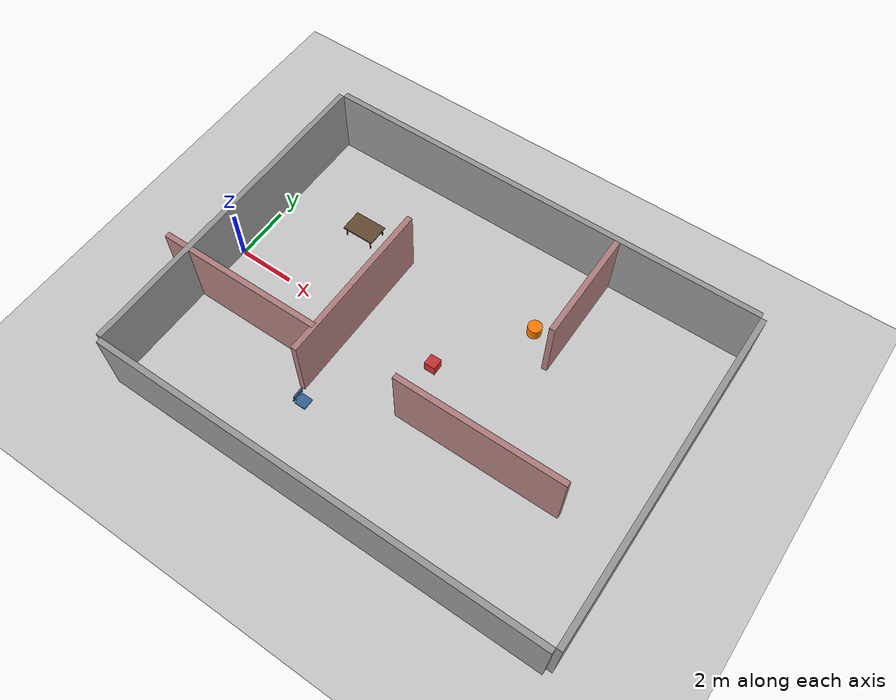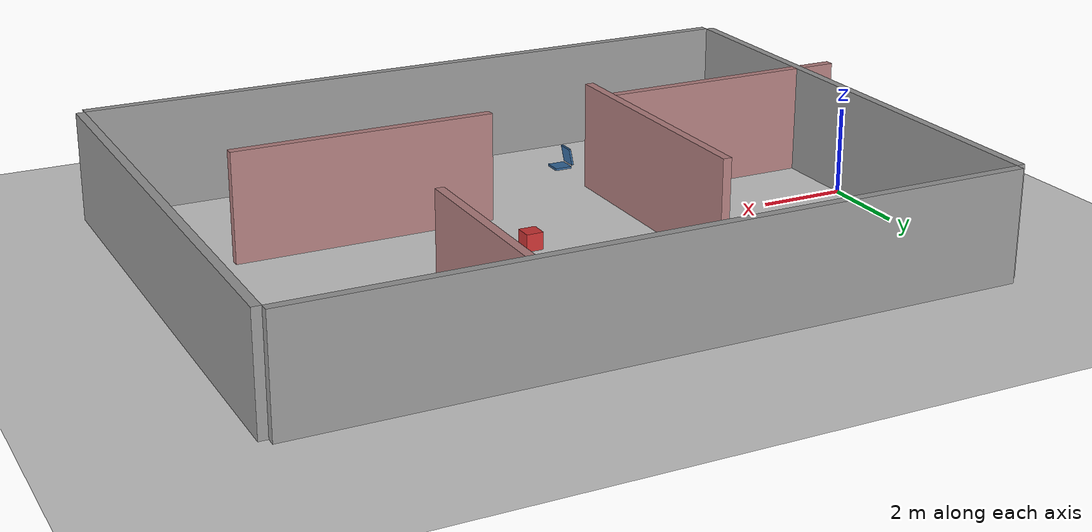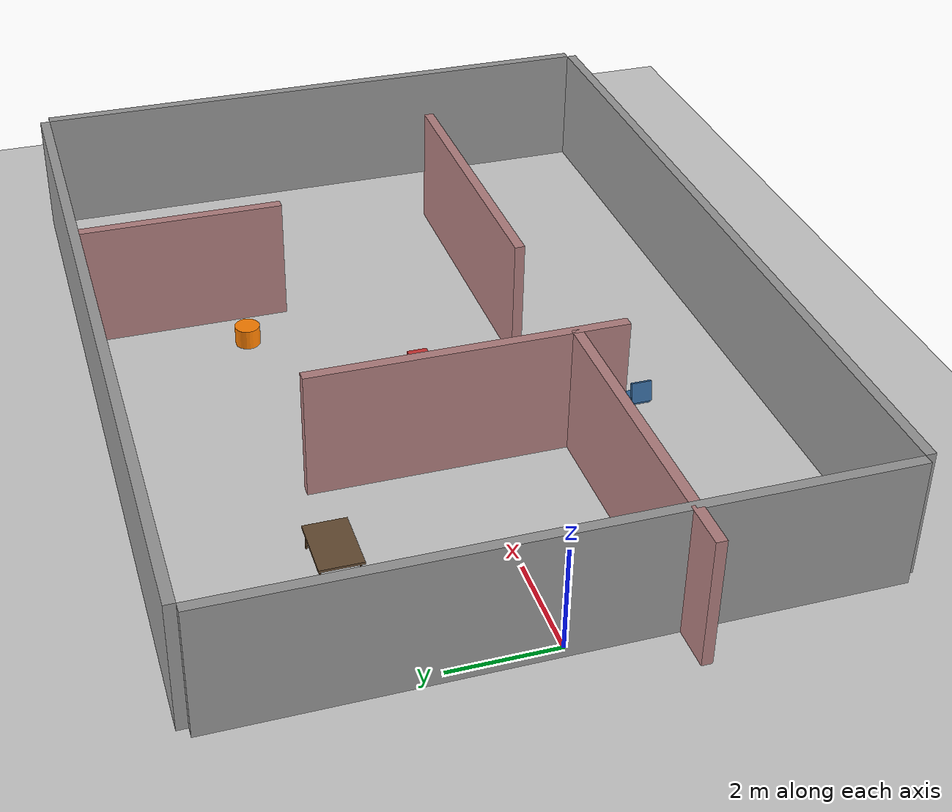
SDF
<?xml version="1.0" ?>
<sdf version="1.9">
  <world name="dynamic_obstacles">

    <plugin filename="libgz-sim-physics-system.so" name="gz::sim::systems::Physics"/>
    <plugin filename="libgz-sim-user-commands-system.so" name="gz::sim::systems::UserCommands"/>
    <plugin filename="libgz-sim-scene-broadcaster-system.so" name="gz::sim::systems::SceneBroadcaster"/>
    <plugin filename="libgz-sim-sensors-system.so" name="gz::sim::systems::Sensors"/>

    <scene>
      <ambient>0.4 0.4 0.4 1.0</ambient>
      <background>0.7 0.7 0.7 1.0</background>
    </scene>

    <model name="ground_plane">
      <static>true</static>
      <link name="link">
        <collision name="collision">
          <geometry>
            <plane>
              <normal>0 0 1</normal>
              <size>100 100</size>
            </plane>
          </geometry>
        </collision>
        <visual name="visual">
          <geometry>
            <plane>
              <normal>0 0 1</normal>
              <size>100 100</size>
            </plane>
          </geometry>
          <material>
            <ambient>0.8 0.8 0.8 1</ambient>
            <diffuse>0.8 0.8 0.8 1</diffuse>
          </material>
        </visual>
      </link>
    </model>

    <light name="sun" type="directional">
      <cast_shadows>true</cast_shadows>
      <pose>0 0 10 0 0 0</pose>
      <diffuse>0.9 0.9 0.9 1</diffuse>
      <specular>0.2 0.2 0.2 1</specular>
      <direction>-0.5 0.1 -0.9</direction>
    </light>

    <model name="wall_outer_north">
      <static>true</static>
      <link name="link">
        <collision name="collision">
          <geometry>
            <box><size>16 0.2 2.5</size></box>
          </geometry>
        </collision>
        <visual name="visual">
          <geometry>
            <box><size>16 0.2 2.5</size></box>
          </geometry>
          <material>
            <ambient>0.6 0.6 0.6 1</ambient>
            <diffuse>0.6 0.6 0.6 1</diffuse>
          </material>
        </visual>
      </link>
      <pose>8 6.1 1.25 0 0 0</pose>
    </model>

    <model name="wall_outer_south">
      <static>true</static>
      <link name="link">
        <collision name="collision">
          <geometry>
            <box><size>16 0.2 2.5</size></box>
          </geometry>
        </collision>
        <visual name="visual">
          <geometry>
            <box><size>16 0.2 2.5</size></box>
          </geometry>
          <material>
            <ambient>0.6 0.6 0.6 1</ambient>
            <diffuse>0.6 0.6 0.6 1</diffuse>
          </material>
        </visual>
      </link>
      <pose>8 -6.1 1.25 0 0 0</pose>
    </model>

    <model name="wall_outer_east">
      <static>true</static>
      <link name="link">
        <collision name="collision">
          <geometry>
            <box><size>0.2 12 2.5</size></box>
          </geometry>
        </collision>
        <visual name="visual">
          <geometry>
            <box><size>0.2 12 2.5</size></box>
          </geometry>
          <material>
            <ambient>0.6 0.6 0.6 1</ambient>
            <diffuse>0.6 0.6 0.6 1</diffuse>
          </material>
        </visual>
      </link>
      <pose>16.1 0 1.25 0 0 0</pose>
    </model>

    <model name="wall_outer_west">
      <static>true</static>
      <link name="link">
        <collision name="collision">
          <geometry>
            <box><size>0.2 12 2.5</size></box>
          </geometry>
        </collision>
        <visual name="visual">
          <geometry>
            <box><size>0.2 12 2.5</size></box>
          </geometry>
          <material>
            <ambient>0.6 0.6 0.6 1</ambient>
            <diffuse>0.6 0.6 0.6 1</diffuse>
          </material>
        </visual>
      </link>
      <pose>-0.1 0 1.25 0 0 0</pose>
    </model>

    <model name="wall_interior_1">
      <static>true</static>
      <link name="link">
        <collision name="collision">
          <geometry>
            <box><size>0.2 6 2.5</size></box>
          </geometry>
        </collision>
        <visual name="visual">
          <geometry>
            <box><size>0.2 6 2.5</size></box>
          </geometry>
          <material>
            <ambient>0.7 0.5 0.5 1</ambient>
            <diffuse>0.7 0.5 0.5 1</diffuse>
          </material>
        </visual>
      </link>
      <pose>5 0 1.25 0 0 0</pose>
    </model>

    <model name="wall_interior_2">
      <static>true</static>
      <link name="link">
        <collision name="collision">
          <geometry>
            <box><size>6 0.2 2.5</size></box>
          </geometry>
        </collision>
        <visual name="visual">
          <geometry>
            <box><size>6 0.2 2.5</size></box>
          </geometry>
          <material>
            <ambient>0.7 0.5 0.5 1</ambient>
            <diffuse>0.7 0.5 0.5 1</diffuse>
          </material>
        </visual>
      </link>
      <pose>2 -2 1.25 0 0 0</pose>
    </model>

    <model name="wall_interior_3">
      <static>true</static>
      <link name="link">
        <collision name="collision">
          <geometry>
            <box><size>6 0.2 2.5</size></box>
          </geometry>
        </collision>
        <visual name="visual">
          <geometry>
            <box><size>6 0.2 2.5</size></box>
          </geometry>
          <material>
            <ambient>0.7 0.5 0.5 1</ambient>
            <diffuse>0.7 0.5 0.5 1</diffuse>
          </material>
        </visual>
      </link>
      <pose>11 -2 1.25 0 0 0</pose>
    </model>

    <model name="wall_interior_4">
      <static>true</static>
      <link name="link">
        <collision name="collision">
          <geometry>
            <box><size>0.2 4 2.5</size></box>
          </geometry>
        </collision>
        <visual name="visual">
          <geometry>
            <box><size>0.2 4 2.5</size></box>
          </geometry>
          <material>
            <ambient>0.7 0.5 0.5 1</ambient>
            <diffuse>0.7 0.5 0.5 1</diffuse>
          </material>
        </visual>
      </link>
      <pose>11 4 1.25 0 0 0</pose>
    </model>

    <model name="table">
      <static>true</static>
      <link name="top">
        <pose>0 0 0.4 0 0 0</pose>
        <collision name="collision">
          <geometry>
            <box><size>1.2 0.8 0.05</size></box>
          </geometry>
        </collision>
        <visual name="visual">
          <geometry>
            <box><size>1.2 0.8 0.05</size></box>
          </geometry>
          <material>
            <ambient>0.4 0.3 0.2 1</ambient>
            <diffuse>0.4 0.3 0.2 1</diffuse>
          </material>
        </visual>
      </link>
      <link name="leg_bl">
        <pose>-0.5 -0.35 0.2 0 0 0</pose>
        <collision name="collision">
          <geometry>
            <cylinder><radius>0.02</radius><length>0.4</length></cylinder>
          </geometry>
        </collision>
        <visual name="visual">
          <geometry>
            <cylinder><radius>0.02</radius><length>0.4</length></cylinder>
          </geometry>
          <material>
            <ambient>0.3 0.2 0.1 1</ambient>
            <diffuse>0.3 0.2 0.1 1</diffuse>
          </material>
        </visual>
      </link>
      <link name="leg_br">
        <pose>0.5 -0.35 0.2 0 0 0</pose>
        <collision name="collision">
          <geometry>
            <cylinder><radius>0.02</radius><length>0.4</length></cylinder>
          </geometry>
        </collision>
        <visual name="visual">
          <geometry>
            <cylinder><radius>0.02</radius><length>0.4</length></cylinder>
          </geometry>
          <material>
            <ambient>0.3 0.2 0.1 1</ambient>
            <diffuse>0.3 0.2 0.1 1</diffuse>
          </material>
        </visual>
      </link>
      <link name="leg_tl">
        <pose>-0.5 0.35 0.2 0 0 0</pose>
        <collision name="collision">
          <geometry>
            <cylinder><radius>0.02</radius><length>0.4</length></cylinder>
          </geometry>
        </collision>
        <visual name="visual">
          <geometry>
            <cylinder><radius>0.02</radius><length>0.4</length></cylinder>
          </geometry>
          <material>
            <ambient>0.3 0.2 0.1 1</ambient>
            <diffuse>0.3 0.2 0.1 1</diffuse>
          </material>
        </visual>
      </link>
      <link name="leg_tr">
        <pose>0.5 0.35 0.2 0 0 0</pose>
        <collision name="collision">
          <geometry>
            <cylinder><radius>0.02</radius><length>0.4</length></cylinder>
          </geometry>
        </collision>
        <visual name="visual">
          <geometry>
            <cylinder><radius>0.02</radius><length>0.4</length></cylinder>
          </geometry>
          <material>
            <ambient>0.3 0.2 0.1 1</ambient>
            <diffuse>0.3 0.2 0.1 1</diffuse>
          </material>
        </visual>
      </link>
      <joint name="joint_bl" type="fixed">
        <parent>top</parent>
        <child>leg_bl</child>
      </joint>
      <joint name="joint_br" type="fixed">
        <parent>top</parent>
        <child>leg_br</child>
      </joint>
      <joint name="joint_tl" type="fixed">
        <parent>top</parent>
        <child>leg_tl</child>
      </joint>
      <joint name="joint_tr" type="fixed">
        <parent>top</parent>
        <child>leg_tr</child>
      </joint>
      <pose>3 3 0 0 0 0</pose>
    </model>

    <model name="chair">
      <static>true</static>
      <link name="seat">
        <pose>0 0 0.4 0 0 0</pose>
        <collision name="collision">
          <geometry>
            <box><size>0.4 0.4 0.05</size></box>
          </geometry>
        </collision>
        <visual name="visual">
          <geometry>
            <box><size>0.4 0.4 0.05</size></box>
          </geometry>
          <material>
            <ambient>0.2 0.4 0.6 1</ambient>
            <diffuse>0.2 0.4 0.6 1</diffuse>
          </material>
        </visual>
      </link>
      <link name="back">
        <pose>-0.2 0 0.65 0 0.2 0</pose>
        <collision name="collision">
          <geometry>
            <box><size>0.05 0.4 0.4</size></box>
          </geometry>
        </collision>
        <visual name="visual">
          <geometry>
            <box><size>0.05 0.4 0.4</size></box>
          </geometry>
          <material>
            <ambient>0.2 0.4 0.6 1</ambient>
            <diffuse>0.2 0.4 0.6 1</diffuse>
          </material>
        </visual>
      </link>
      <joint name="joint_back" type="fixed">
        <parent>seat</parent>
        <child>back</child>
      </joint>
      <pose>5.5 -3.5 0 0 0 0</pose>
    </model>

    <model name="obstacle_box1">
      <static>true</static>
      <link name="link">
        <collision name="collision">
          <geometry>
            <box><size>0.4 0.4 0.4</size></box>
          </geometry>
        </collision>
        <visual name="visual">
          <geometry>
            <box><size>0.4 0.4 0.4</size></box>
          </geometry>
          <material>
            <ambient>0.8 0.2 0.2 1</ambient>
            <diffuse>0.8 0.2 0.2 1</diffuse>
          </material>
        </visual>
      </link>
      <pose>8 0 0.2 0 0 0</pose>
    </model>

    <model name="moving_obstacle">
      <static>false</static>
      <pose>10 3 0.2 0 0 0</pose>
      <link name="body">
        <collision name="collision">
          <geometry>
            <cylinder><radius>0.25</radius><length>0.4</length></cylinder>
          </geometry>
        </collision>
        <visual name="visual">
          <geometry>
            <cylinder><radius>0.25</radius><length>0.4</length></cylinder>
          </geometry>
          <material>
            <ambient>1.0 0.5 0 1</ambient>
            <diffuse>1.0 0.5 0 1</diffuse>
          </material>
        </visual>
        <inertial>
          <mass>5.0</mass>
          <inertia>1 0 0 0 1 0 0 0 1</inertia>
        </inertial>
      </link>
      <plugin filename="libgz-sim-velocity-control-system.so" name="gz::sim::systems::VelocityControl">
        <subtopic>cmd_vel</subtopic>
      </plugin>
    </model>

  </world>
</sdf>
